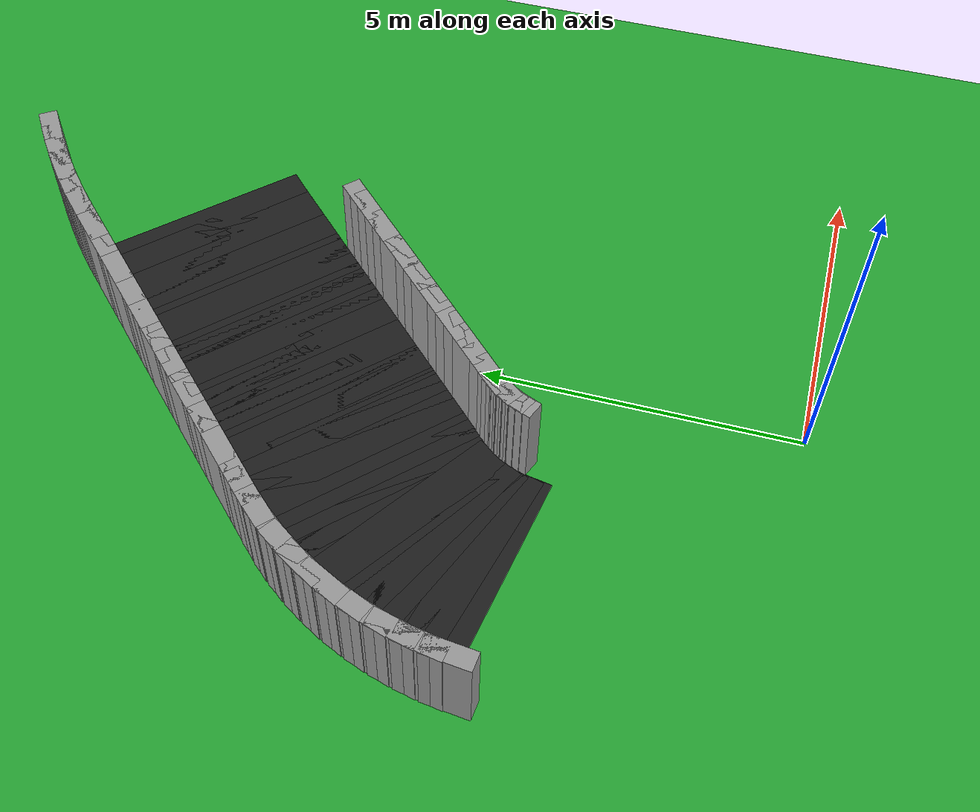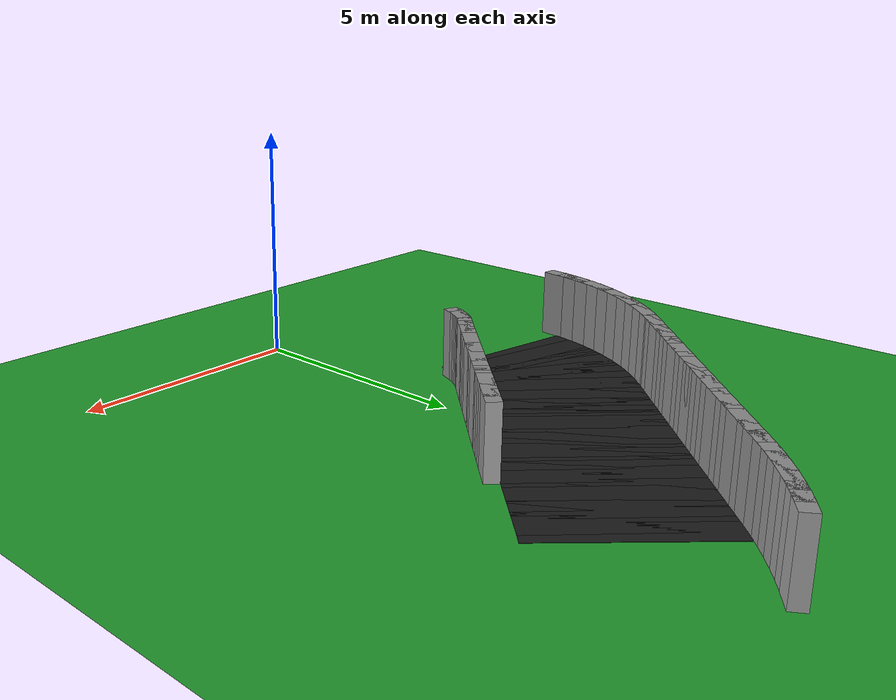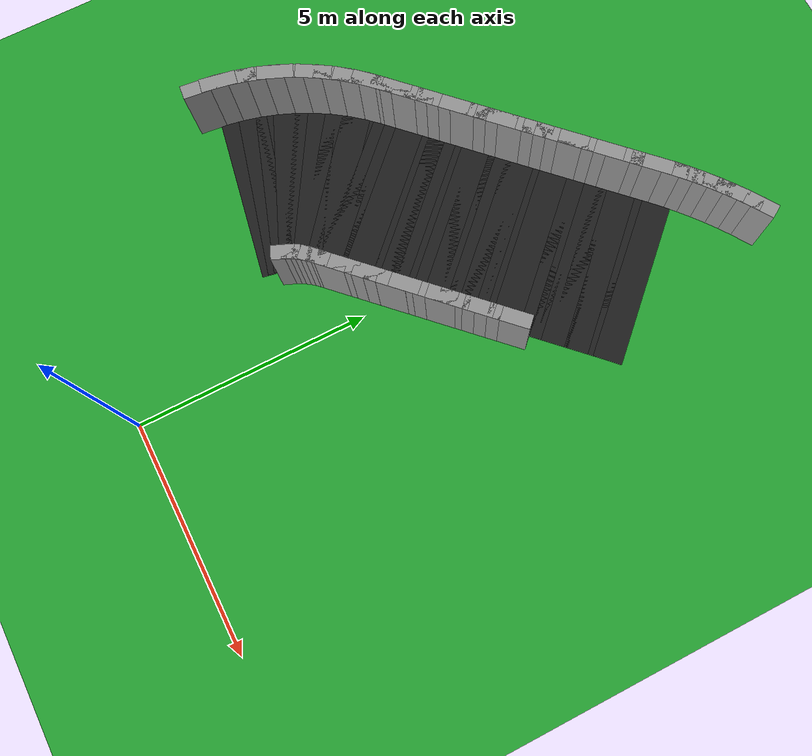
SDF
<sdf version="1.6">
 <world name="obstacle_tight">
  <include><uri>model://sun</uri></include>
  <model name="ground_plane">
   <static>true</static>
   <link name="link">
    <collision name="collision">
     <surface><friction><ode><mu>100</mu><mu2>50</mu2></ode></friction></surface>
     <geometry><plane><normal>0 0 1</normal><size>120 120</size></plane></geometry>
    </collision>
    <visual name="visual">
     <geometry><plane><normal>0 0 1</normal><size>120 120</size></plane></geometry>
     <material>
      <script><uri>file://media/materials/scripts/gazebo.material</uri><name>Gazebo/Green</name></script>
     </material>
    </visual>
   </link>
  </model>
  <model name="curbR_260">
   <static>true</static>
   <pose>1.962 12.877 0.750 0 0 -2.56040</pose>
   <link name="link">
    <collision name="collision"><geometry><box><size>0.673 0.300 1.500</size></box></geometry></collision>
    <visual name="visual">
     <geometry><box><size>0.673 0.300 1.500</size></box></geometry>
     <material>
      <script><uri>file://media/materials/scripts/gazebo.material</uri><name>Gazebo/Grey</name></script>
     </material>
    </visual>
   </link>
  </model>
  <model name="curbR_261">
   <static>true</static>
   <pose>1.704 12.702 0.750 0 0 -2.52898</pose>
   <link name="link">
    <collision name="collision"><geometry><box><size>0.673 0.300 1.500</size></box></geometry></collision>
    <visual name="visual">
     <geometry><box><size>0.673 0.300 1.500</size></box></geometry>
     <material>
      <script><uri>file://media/materials/scripts/gazebo.material</uri><name>Gazebo/Grey</name></script>
     </material>
    </visual>
   </link>
  </model>
  <model name="curbR_262">
   <static>true</static>
   <pose>1.451 12.518 0.750 0 0 -2.49757</pose>
   <link name="link">
    <collision name="collision"><geometry><box><size>0.673 0.300 1.500</size></box></geometry></collision>
    <visual name="visual">
     <geometry><box><size>0.673 0.300 1.500</size></box></geometry>
     <material>
      <script><uri>file://media/materials/scripts/gazebo.material</uri><name>Gazebo/Grey</name></script>
     </material>
    </visual>
   </link>
  </model>
  <model name="curbR_263">
   <static>true</static>
   <pose>1.204 12.326 0.750 0 0 -2.46615</pose>
   <link name="link">
    <collision name="collision"><geometry><box><size>0.673 0.300 1.500</size></box></geometry></collision>
    <visual name="visual">
     <geometry><box><size>0.673 0.300 1.500</size></box></geometry>
     <material>
      <script><uri>file://media/materials/scripts/gazebo.material</uri><name>Gazebo/Grey</name></script>
     </material>
    </visual>
   </link>
  </model>
  <model name="curbR_264">
   <static>true</static>
   <pose>0.963 12.127 0.750 0 0 -2.43473</pose>
   <link name="link">
    <collision name="collision"><geometry><box><size>0.673 0.300 1.500</size></box></geometry></collision>
    <visual name="visual">
     <geometry><box><size>0.673 0.300 1.500</size></box></geometry>
     <material>
      <script><uri>file://media/materials/scripts/gazebo.material</uri><name>Gazebo/Grey</name></script>
     </material>
    </visual>
   </link>
  </model>
  <model name="curbR_265">
   <static>true</static>
   <pose>0.728 11.920 0.750 0 0 -2.40332</pose>
   <link name="link">
    <collision name="collision"><geometry><box><size>0.673 0.300 1.500</size></box></geometry></collision>
    <visual name="visual">
     <geometry><box><size>0.673 0.300 1.500</size></box></geometry>
     <material>
      <script><uri>file://media/materials/scripts/gazebo.material</uri><name>Gazebo/Grey</name></script>
     </material>
    </visual>
   </link>
  </model>
  <model name="asphalt_266">
   <static>true</static>
   <pose>1.857 10.306 0.005 0 0 -2.37190</pose>
   <link name="link">
    <visual name="visual">
     <geometry><box><size>0.611 3.600 0.010</size></box></geometry>
     <material>
      <script><uri>file://media/materials/scripts/gazebo.material</uri><name>Gazebo/Black</name></script>
     </material>
    </visual>
   </link>
  </model>
  <model name="curbR_266">
   <static>true</static>
   <pose>0.501 11.706 0.750 0 0 -2.37190</pose>
   <link name="link">
    <collision name="collision"><geometry><box><size>0.673 0.300 1.500</size></box></geometry></collision>
    <visual name="visual">
     <geometry><box><size>0.673 0.300 1.500</size></box></geometry>
     <material>
      <script><uri>file://media/materials/scripts/gazebo.material</uri><name>Gazebo/Grey</name></script>
     </material>
    </visual>
   </link>
  </model>
  <model name="asphalt_267">
   <static>true</static>
   <pose>1.679 10.130 0.005 0 0 -2.35619</pose>
   <link name="link">
    <visual name="visual">
     <geometry><box><size>0.610 3.600 0.010</size></box></geometry>
     <material>
      <script><uri>file://media/materials/scripts/gazebo.material</uri><name>Gazebo/Black</name></script>
     </material>
    </visual>
   </link>
  </model>
  <model name="curbR_267">
   <static>true</static>
   <pose>0.300 11.509 0.750 0 0 -2.35619</pose>
   <link name="link">
    <collision name="collision"><geometry><box><size>0.610 0.300 1.500</size></box></geometry></collision>
    <visual name="visual">
     <geometry><box><size>0.610 0.300 1.500</size></box></geometry>
     <material>
      <script><uri>file://media/materials/scripts/gazebo.material</uri><name>Gazebo/Grey</name></script>
     </material>
    </visual>
   </link>
  </model>
  <model name="asphalt_268">
   <static>true</static>
   <pose>1.502 9.954 0.005 0 0 -2.35619</pose>
   <link name="link">
    <visual name="visual">
     <geometry><box><size>0.610 3.600 0.010</size></box></geometry>
     <material>
      <script><uri>file://media/materials/scripts/gazebo.material</uri><name>Gazebo/Black</name></script>
     </material>
    </visual>
   </link>
  </model>
  <model name="curbR_268">
   <static>true</static>
   <pose>0.123 11.332 0.750 0 0 -2.35619</pose>
   <link name="link">
    <collision name="collision"><geometry><box><size>0.610 0.300 1.500</size></box></geometry></collision>
    <visual name="visual">
     <geometry><box><size>0.610 0.300 1.500</size></box></geometry>
     <material>
      <script><uri>file://media/materials/scripts/gazebo.material</uri><name>Gazebo/Grey</name></script>
     </material>
    </visual>
   </link>
  </model>
  <model name="asphalt_269">
   <static>true</static>
   <pose>1.325 9.777 0.005 0 0 -2.35619</pose>
   <link name="link">
    <visual name="visual">
     <geometry><box><size>0.610 3.600 0.010</size></box></geometry>
     <material>
      <script><uri>file://media/materials/scripts/gazebo.material</uri><name>Gazebo/Black</name></script>
     </material>
    </visual>
   </link>
  </model>
  <model name="curbR_269">
   <static>true</static>
   <pose>-0.054 11.156 0.750 0 0 -2.35619</pose>
   <link name="link">
    <collision name="collision"><geometry><box><size>0.610 0.300 1.500</size></box></geometry></collision>
    <visual name="visual">
     <geometry><box><size>0.610 0.300 1.500</size></box></geometry>
     <material>
      <script><uri>file://media/materials/scripts/gazebo.material</uri><name>Gazebo/Grey</name></script>
     </material>
    </visual>
   </link>
  </model>
  <model name="asphalt_270">
   <static>true</static>
   <pose>1.149 9.600 0.005 0 0 -2.35619</pose>
   <link name="link">
    <visual name="visual">
     <geometry><box><size>0.610 3.600 0.010</size></box></geometry>
     <material>
      <script><uri>file://media/materials/scripts/gazebo.material</uri><name>Gazebo/Black</name></script>
     </material>
    </visual>
   </link>
  </model>
  <model name="curbR_270">
   <static>true</static>
   <pose>-0.230 10.979 0.750 0 0 -2.35619</pose>
   <link name="link">
    <collision name="collision"><geometry><box><size>0.610 0.300 1.500</size></box></geometry></collision>
    <visual name="visual">
     <geometry><box><size>0.610 0.300 1.500</size></box></geometry>
     <material>
      <script><uri>file://media/materials/scripts/gazebo.material</uri><name>Gazebo/Grey</name></script>
     </material>
    </visual>
   </link>
  </model>
  <model name="asphalt_271">
   <static>true</static>
   <pose>0.972 9.423 0.005 0 0 -2.35619</pose>
   <link name="link">
    <visual name="visual">
     <geometry><box><size>0.610 3.600 0.010</size></box></geometry>
     <material>
      <script><uri>file://media/materials/scripts/gazebo.material</uri><name>Gazebo/Black</name></script>
     </material>
    </visual>
   </link>
  </model>
  <model name="curbR_271">
   <static>true</static>
   <pose>-0.407 10.802 0.750 0 0 -2.35619</pose>
   <link name="link">
    <collision name="collision"><geometry><box><size>0.610 0.300 1.500</size></box></geometry></collision>
    <visual name="visual">
     <geometry><box><size>0.610 0.300 1.500</size></box></geometry>
     <material>
      <script><uri>file://media/materials/scripts/gazebo.material</uri><name>Gazebo/Grey</name></script>
     </material>
    </visual>
   </link>
  </model>
  <model name="asphalt_272">
   <static>true</static>
   <pose>0.795 9.247 0.005 0 0 -2.35619</pose>
   <link name="link">
    <visual name="visual">
     <geometry><box><size>0.610 3.600 0.010</size></box></geometry>
     <material>
      <script><uri>file://media/materials/scripts/gazebo.material</uri><name>Gazebo/Black</name></script>
     </material>
    </visual>
   </link>
  </model>
  <model name="curbR_272">
   <static>true</static>
   <pose>-0.584 10.625 0.750 0 0 -2.35619</pose>
   <link name="link">
    <collision name="collision"><geometry><box><size>0.610 0.300 1.500</size></box></geometry></collision>
    <visual name="visual">
     <geometry><box><size>0.610 0.300 1.500</size></box></geometry>
     <material>
      <script><uri>file://media/materials/scripts/gazebo.material</uri><name>Gazebo/Grey</name></script>
     </material>
    </visual>
   </link>
  </model>
  <model name="asphalt_273">
   <static>true</static>
   <pose>0.618 9.070 0.005 0 0 -2.35619</pose>
   <link name="link">
    <visual name="visual">
     <geometry><box><size>0.610 3.600 0.010</size></box></geometry>
     <material>
      <script><uri>file://media/materials/scripts/gazebo.material</uri><name>Gazebo/Black</name></script>
     </material>
    </visual>
   </link>
  </model>
  <model name="curbR_273">
   <static>true</static>
   <pose>-0.761 10.449 0.750 0 0 -2.35619</pose>
   <link name="link">
    <collision name="collision"><geometry><box><size>0.610 0.300 1.500</size></box></geometry></collision>
    <visual name="visual">
     <geometry><box><size>0.610 0.300 1.500</size></box></geometry>
     <material>
      <script><uri>file://media/materials/scripts/gazebo.material</uri><name>Gazebo/Grey</name></script>
     </material>
    </visual>
   </link>
  </model>
  <model name="asphalt_274">
   <static>true</static>
   <pose>0.441 8.893 0.005 0 0 -2.35619</pose>
   <link name="link">
    <visual name="visual">
     <geometry><box><size>0.610 3.600 0.010</size></box></geometry>
     <material>
      <script><uri>file://media/materials/scripts/gazebo.material</uri><name>Gazebo/Black</name></script>
     </material>
    </visual>
   </link>
  </model>
  <model name="curbL_274">
   <static>true</static>
   <pose>1.820 7.514 0.750 0 0 -2.35619</pose>
   <link name="link">
    <collision name="collision"><geometry><box><size>0.610 0.300 1.500</size></box></geometry></collision>
    <visual name="visual">
     <geometry><box><size>0.610 0.300 1.500</size></box></geometry>
     <material>
      <script><uri>file://media/materials/scripts/gazebo.material</uri><name>Gazebo/Grey</name></script>
     </material>
    </visual>
   </link>
  </model>
  <model name="curbR_274">
   <static>true</static>
   <pose>-0.937 10.272 0.750 0 0 -2.35619</pose>
   <link name="link">
    <collision name="collision"><geometry><box><size>0.610 0.300 1.500</size></box></geometry></collision>
    <visual name="visual">
     <geometry><box><size>0.610 0.300 1.500</size></box></geometry>
     <material>
      <script><uri>file://media/materials/scripts/gazebo.material</uri><name>Gazebo/Grey</name></script>
     </material>
    </visual>
   </link>
  </model>
  <model name="asphalt_275">
   <static>true</static>
   <pose>0.265 8.716 0.005 0 0 -2.35619</pose>
   <link name="link">
    <visual name="visual">
     <geometry><box><size>0.610 3.600 0.010</size></box></geometry>
     <material>
      <script><uri>file://media/materials/scripts/gazebo.material</uri><name>Gazebo/Black</name></script>
     </material>
    </visual>
   </link>
  </model>
  <model name="curbL_275">
   <static>true</static>
   <pose>1.643 7.337 0.750 0 0 -2.35619</pose>
   <link name="link">
    <collision name="collision"><geometry><box><size>0.610 0.300 1.500</size></box></geometry></collision>
    <visual name="visual">
     <geometry><box><size>0.610 0.300 1.500</size></box></geometry>
     <material>
      <script><uri>file://media/materials/scripts/gazebo.material</uri><name>Gazebo/Grey</name></script>
     </material>
    </visual>
   </link>
  </model>
  <model name="curbR_275">
   <static>true</static>
   <pose>-1.114 10.095 0.750 0 0 -2.35619</pose>
   <link name="link">
    <collision name="collision"><geometry><box><size>0.610 0.300 1.500</size></box></geometry></collision>
    <visual name="visual">
     <geometry><box><size>0.610 0.300 1.500</size></box></geometry>
     <material>
      <script><uri>file://media/materials/scripts/gazebo.material</uri><name>Gazebo/Grey</name></script>
     </material>
    </visual>
   </link>
  </model>
  <model name="asphalt_276">
   <static>true</static>
   <pose>0.088 8.539 0.005 0 0 -2.35619</pose>
   <link name="link">
    <visual name="visual">
     <geometry><box><size>0.610 3.600 0.010</size></box></geometry>
     <material>
      <script><uri>file://media/materials/scripts/gazebo.material</uri><name>Gazebo/Black</name></script>
     </material>
    </visual>
   </link>
  </model>
  <model name="curbL_276">
   <static>true</static>
   <pose>1.467 7.161 0.750 0 0 -2.35619</pose>
   <link name="link">
    <collision name="collision"><geometry><box><size>0.610 0.300 1.500</size></box></geometry></collision>
    <visual name="visual">
     <geometry><box><size>0.610 0.300 1.500</size></box></geometry>
     <material>
      <script><uri>file://media/materials/scripts/gazebo.material</uri><name>Gazebo/Grey</name></script>
     </material>
    </visual>
   </link>
  </model>
  <model name="curbR_276">
   <static>true</static>
   <pose>-1.291 9.918 0.750 0 0 -2.35619</pose>
   <link name="link">
    <collision name="collision"><geometry><box><size>0.610 0.300 1.500</size></box></geometry></collision>
    <visual name="visual">
     <geometry><box><size>0.610 0.300 1.500</size></box></geometry>
     <material>
      <script><uri>file://media/materials/scripts/gazebo.material</uri><name>Gazebo/Grey</name></script>
     </material>
    </visual>
   </link>
  </model>
  <model name="asphalt_277">
   <static>true</static>
   <pose>-0.089 8.363 0.005 0 0 -2.35619</pose>
   <link name="link">
    <visual name="visual">
     <geometry><box><size>0.610 3.600 0.010</size></box></geometry>
     <material>
      <script><uri>file://media/materials/scripts/gazebo.material</uri><name>Gazebo/Black</name></script>
     </material>
    </visual>
   </link>
  </model>
  <model name="curbL_277">
   <static>true</static>
   <pose>1.290 6.984 0.750 0 0 -2.35619</pose>
   <link name="link">
    <collision name="collision"><geometry><box><size>0.610 0.300 1.500</size></box></geometry></collision>
    <visual name="visual">
     <geometry><box><size>0.610 0.300 1.500</size></box></geometry>
     <material>
      <script><uri>file://media/materials/scripts/gazebo.material</uri><name>Gazebo/Grey</name></script>
     </material>
    </visual>
   </link>
  </model>
  <model name="curbR_277">
   <static>true</static>
   <pose>-1.468 9.741 0.750 0 0 -2.35619</pose>
   <link name="link">
    <collision name="collision"><geometry><box><size>0.610 0.300 1.500</size></box></geometry></collision>
    <visual name="visual">
     <geometry><box><size>0.610 0.300 1.500</size></box></geometry>
     <material>
      <script><uri>file://media/materials/scripts/gazebo.material</uri><name>Gazebo/Grey</name></script>
     </material>
    </visual>
   </link>
  </model>
  <model name="asphalt_278">
   <static>true</static>
   <pose>-0.266 8.186 0.005 0 0 -2.35619</pose>
   <link name="link">
    <visual name="visual">
     <geometry><box><size>0.610 3.600 0.010</size></box></geometry>
     <material>
      <script><uri>file://media/materials/scripts/gazebo.material</uri><name>Gazebo/Black</name></script>
     </material>
    </visual>
   </link>
  </model>
  <model name="curbL_278">
   <static>true</static>
   <pose>1.113 6.807 0.750 0 0 -2.35619</pose>
   <link name="link">
    <collision name="collision"><geometry><box><size>0.610 0.300 1.500</size></box></geometry></collision>
    <visual name="visual">
     <geometry><box><size>0.610 0.300 1.500</size></box></geometry>
     <material>
      <script><uri>file://media/materials/scripts/gazebo.material</uri><name>Gazebo/Grey</name></script>
     </material>
    </visual>
   </link>
  </model>
  <model name="curbR_278">
   <static>true</static>
   <pose>-1.645 9.565 0.750 0 0 -2.35619</pose>
   <link name="link">
    <collision name="collision"><geometry><box><size>0.610 0.300 1.500</size></box></geometry></collision>
    <visual name="visual">
     <geometry><box><size>0.610 0.300 1.500</size></box></geometry>
     <material>
      <script><uri>file://media/materials/scripts/gazebo.material</uri><name>Gazebo/Grey</name></script>
     </material>
    </visual>
   </link>
  </model>
  <model name="asphalt_279">
   <static>true</static>
   <pose>-0.442 8.009 0.005 0 0 -2.35619</pose>
   <link name="link">
    <visual name="visual">
     <geometry><box><size>0.610 3.600 0.010</size></box></geometry>
     <material>
      <script><uri>file://media/materials/scripts/gazebo.material</uri><name>Gazebo/Black</name></script>
     </material>
    </visual>
   </link>
  </model>
  <model name="curbL_279">
   <static>true</static>
   <pose>0.936 6.630 0.750 0 0 -2.35619</pose>
   <link name="link">
    <collision name="collision"><geometry><box><size>0.610 0.300 1.500</size></box></geometry></collision>
    <visual name="visual">
     <geometry><box><size>0.610 0.300 1.500</size></box></geometry>
     <material>
      <script><uri>file://media/materials/scripts/gazebo.material</uri><name>Gazebo/Grey</name></script>
     </material>
    </visual>
   </link>
  </model>
  <model name="curbR_279">
   <static>true</static>
   <pose>-1.821 9.388 0.750 0 0 -2.35619</pose>
   <link name="link">
    <collision name="collision"><geometry><box><size>0.610 0.300 1.500</size></box></geometry></collision>
    <visual name="visual">
     <geometry><box><size>0.610 0.300 1.500</size></box></geometry>
     <material>
      <script><uri>file://media/materials/scripts/gazebo.material</uri><name>Gazebo/Grey</name></script>
     </material>
    </visual>
   </link>
  </model>
  <model name="asphalt_280">
   <static>true</static>
   <pose>-0.619 7.832 0.005 0 0 -2.35619</pose>
   <link name="link">
    <visual name="visual">
     <geometry><box><size>0.610 3.600 0.010</size></box></geometry>
     <material>
      <script><uri>file://media/materials/scripts/gazebo.material</uri><name>Gazebo/Black</name></script>
     </material>
    </visual>
   </link>
  </model>
  <model name="curbL_280">
   <static>true</static>
   <pose>0.760 6.453 0.750 0 0 -2.35619</pose>
   <link name="link">
    <collision name="collision"><geometry><box><size>0.610 0.300 1.500</size></box></geometry></collision>
    <visual name="visual">
     <geometry><box><size>0.610 0.300 1.500</size></box></geometry>
     <material>
      <script><uri>file://media/materials/scripts/gazebo.material</uri><name>Gazebo/Grey</name></script>
     </material>
    </visual>
   </link>
  </model>
  <model name="curbR_280">
   <static>true</static>
   <pose>-1.998 9.211 0.750 0 0 -2.35619</pose>
   <link name="link">
    <collision name="collision"><geometry><box><size>0.610 0.300 1.500</size></box></geometry></collision>
    <visual name="visual">
     <geometry><box><size>0.610 0.300 1.500</size></box></geometry>
     <material>
      <script><uri>file://media/materials/scripts/gazebo.material</uri><name>Gazebo/Grey</name></script>
     </material>
    </visual>
   </link>
  </model>
  <model name="asphalt_281">
   <static>true</static>
   <pose>-0.796 7.656 0.005 0 0 -2.35619</pose>
   <link name="link">
    <visual name="visual">
     <geometry><box><size>0.610 3.600 0.010</size></box></geometry>
     <material>
      <script><uri>file://media/materials/scripts/gazebo.material</uri><name>Gazebo/Black</name></script>
     </material>
    </visual>
   </link>
  </model>
  <model name="curbL_281">
   <static>true</static>
   <pose>0.583 6.277 0.750 0 0 -2.35619</pose>
   <link name="link">
    <collision name="collision"><geometry><box><size>0.610 0.300 1.500</size></box></geometry></collision>
    <visual name="visual">
     <geometry><box><size>0.610 0.300 1.500</size></box></geometry>
     <material>
      <script><uri>file://media/materials/scripts/gazebo.material</uri><name>Gazebo/Grey</name></script>
     </material>
    </visual>
   </link>
  </model>
  <model name="curbR_281">
   <static>true</static>
   <pose>-2.175 9.034 0.750 0 0 -2.35619</pose>
   <link name="link">
    <collision name="collision"><geometry><box><size>0.610 0.300 1.500</size></box></geometry></collision>
    <visual name="visual">
     <geometry><box><size>0.610 0.300 1.500</size></box></geometry>
     <material>
      <script><uri>file://media/materials/scripts/gazebo.material</uri><name>Gazebo/Grey</name></script>
     </material>
    </visual>
   </link>
  </model>
  <model name="asphalt_282">
   <static>true</static>
   <pose>-0.973 7.479 0.005 0 0 -2.35619</pose>
   <link name="link">
    <visual name="visual">
     <geometry><box><size>0.610 3.600 0.010</size></box></geometry>
     <material>
      <script><uri>file://media/materials/scripts/gazebo.material</uri><name>Gazebo/Black</name></script>
     </material>
    </visual>
   </link>
  </model>
  <model name="curbL_282">
   <static>true</static>
   <pose>0.406 6.100 0.750 0 0 -2.35619</pose>
   <link name="link">
    <collision name="collision"><geometry><box><size>0.610 0.300 1.500</size></box></geometry></collision>
    <visual name="visual">
     <geometry><box><size>0.610 0.300 1.500</size></box></geometry>
     <material>
      <script><uri>file://media/materials/scripts/gazebo.material</uri><name>Gazebo/Grey</name></script>
     </material>
    </visual>
   </link>
  </model>
  <model name="curbR_282">
   <static>true</static>
   <pose>-2.352 8.858 0.750 0 0 -2.35619</pose>
   <link name="link">
    <collision name="collision"><geometry><box><size>0.610 0.300 1.500</size></box></geometry></collision>
    <visual name="visual">
     <geometry><box><size>0.610 0.300 1.500</size></box></geometry>
     <material>
      <script><uri>file://media/materials/scripts/gazebo.material</uri><name>Gazebo/Grey</name></script>
     </material>
    </visual>
   </link>
  </model>
  <model name="asphalt_283">
   <static>true</static>
   <pose>-1.150 7.302 0.005 0 0 -2.35619</pose>
   <link name="link">
    <visual name="visual">
     <geometry><box><size>0.610 3.600 0.010</size></box></geometry>
     <material>
      <script><uri>file://media/materials/scripts/gazebo.material</uri><name>Gazebo/Black</name></script>
     </material>
    </visual>
   </link>
  </model>
  <model name="curbL_283">
   <static>true</static>
   <pose>0.229 5.923 0.750 0 0 -2.35619</pose>
   <link name="link">
    <collision name="collision"><geometry><box><size>0.610 0.300 1.500</size></box></geometry></collision>
    <visual name="visual">
     <geometry><box><size>0.610 0.300 1.500</size></box></geometry>
     <material>
      <script><uri>file://media/materials/scripts/gazebo.material</uri><name>Gazebo/Grey</name></script>
     </material>
    </visual>
   </link>
  </model>
  <model name="curbR_283">
   <static>true</static>
   <pose>-2.528 8.681 0.750 0 0 -2.35619</pose>
   <link name="link">
    <collision name="collision"><geometry><box><size>0.610 0.300 1.500</size></box></geometry></collision>
    <visual name="visual">
     <geometry><box><size>0.610 0.300 1.500</size></box></geometry>
     <material>
      <script><uri>file://media/materials/scripts/gazebo.material</uri><name>Gazebo/Grey</name></script>
     </material>
    </visual>
   </link>
  </model>
  <model name="asphalt_284">
   <static>true</static>
   <pose>-1.326 7.125 0.005 0 0 -2.35619</pose>
   <link name="link">
    <visual name="visual">
     <geometry><box><size>0.610 3.600 0.010</size></box></geometry>
     <material>
      <script><uri>file://media/materials/scripts/gazebo.material</uri><name>Gazebo/Black</name></script>
     </material>
    </visual>
   </link>
  </model>
  <model name="curbL_284">
   <static>true</static>
   <pose>0.053 5.746 0.750 0 0 -2.35619</pose>
   <link name="link">
    <collision name="collision"><geometry><box><size>0.610 0.300 1.500</size></box></geometry></collision>
    <visual name="visual">
     <geometry><box><size>0.610 0.300 1.500</size></box></geometry>
     <material>
      <script><uri>file://media/materials/scripts/gazebo.material</uri><name>Gazebo/Grey</name></script>
     </material>
    </visual>
   </link>
  </model>
  <model name="curbR_284">
   <static>true</static>
   <pose>-2.705 8.504 0.750 0 0 -2.35619</pose>
   <link name="link">
    <collision name="collision"><geometry><box><size>0.610 0.300 1.500</size></box></geometry></collision>
    <visual name="visual">
     <geometry><box><size>0.610 0.300 1.500</size></box></geometry>
     <material>
      <script><uri>file://media/materials/scripts/gazebo.material</uri><name>Gazebo/Grey</name></script>
     </material>
    </visual>
   </link>
  </model>
  <model name="asphalt_285">
   <static>true</static>
   <pose>-1.503 6.948 0.005 0 0 -2.35619</pose>
   <link name="link">
    <visual name="visual">
     <geometry><box><size>0.610 3.600 0.010</size></box></geometry>
     <material>
      <script><uri>file://media/materials/scripts/gazebo.material</uri><name>Gazebo/Black</name></script>
     </material>
    </visual>
   </link>
  </model>
  <model name="curbL_285">
   <static>true</static>
   <pose>-0.124 5.570 0.750 0 0 -2.35619</pose>
   <link name="link">
    <collision name="collision"><geometry><box><size>0.610 0.300 1.500</size></box></geometry></collision>
    <visual name="visual">
     <geometry><box><size>0.610 0.300 1.500</size></box></geometry>
     <material>
      <script><uri>file://media/materials/scripts/gazebo.material</uri><name>Gazebo/Grey</name></script>
     </material>
    </visual>
   </link>
  </model>
  <model name="curbR_285">
   <static>true</static>
   <pose>-2.882 8.327 0.750 0 0 -2.35619</pose>
   <link name="link">
    <collision name="collision"><geometry><box><size>0.610 0.300 1.500</size></box></geometry></collision>
    <visual name="visual">
     <geometry><box><size>0.610 0.300 1.500</size></box></geometry>
     <material>
      <script><uri>file://media/materials/scripts/gazebo.material</uri><name>Gazebo/Grey</name></script>
     </material>
    </visual>
   </link>
  </model>
  <model name="asphalt_286">
   <static>true</static>
   <pose>-1.680 6.772 0.005 0 0 -2.35619</pose>
   <link name="link">
    <visual name="visual">
     <geometry><box><size>0.610 3.600 0.010</size></box></geometry>
     <material>
      <script><uri>file://media/materials/scripts/gazebo.material</uri><name>Gazebo/Black</name></script>
     </material>
    </visual>
   </link>
  </model>
  <model name="curbL_286">
   <static>true</static>
   <pose>-0.301 5.393 0.750 0 0 -2.35619</pose>
   <link name="link">
    <collision name="collision"><geometry><box><size>0.610 0.300 1.500</size></box></geometry></collision>
    <visual name="visual">
     <geometry><box><size>0.610 0.300 1.500</size></box></geometry>
     <material>
      <script><uri>file://media/materials/scripts/gazebo.material</uri><name>Gazebo/Grey</name></script>
     </material>
    </visual>
   </link>
  </model>
  <model name="curbR_286">
   <static>true</static>
   <pose>-3.059 8.150 0.750 0 0 -2.35619</pose>
   <link name="link">
    <collision name="collision"><geometry><box><size>0.610 0.300 1.500</size></box></geometry></collision>
    <visual name="visual">
     <geometry><box><size>0.610 0.300 1.500</size></box></geometry>
     <material>
      <script><uri>file://media/materials/scripts/gazebo.material</uri><name>Gazebo/Grey</name></script>
     </material>
    </visual>
   </link>
  </model>
  <model name="asphalt_287">
   <static>true</static>
   <pose>-1.857 6.595 0.005 0 0 -2.35619</pose>
   <link name="link">
    <visual name="visual">
     <geometry><box><size>0.610 3.600 0.010</size></box></geometry>
     <material>
      <script><uri>file://media/materials/scripts/gazebo.material</uri><name>Gazebo/Black</name></script>
     </material>
    </visual>
   </link>
  </model>
  <model name="curbL_287">
   <static>true</static>
   <pose>-0.478 5.216 0.750 0 0 -2.35619</pose>
   <link name="link">
    <collision name="collision"><geometry><box><size>0.610 0.300 1.500</size></box></geometry></collision>
    <visual name="visual">
     <geometry><box><size>0.610 0.300 1.500</size></box></geometry>
     <material>
      <script><uri>file://media/materials/scripts/gazebo.material</uri><name>Gazebo/Grey</name></script>
     </material>
    </visual>
   </link>
  </model>
  <model name="curbR_287">
   <static>true</static>
   <pose>-3.236 7.974 0.750 0 0 -2.35619</pose>
   <link name="link">
    <collision name="collision"><geometry><box><size>0.610 0.300 1.500</size></box></geometry></collision>
    <visual name="visual">
     <geometry><box><size>0.610 0.300 1.500</size></box></geometry>
     <material>
      <script><uri>file://media/materials/scripts/gazebo.material</uri><name>Gazebo/Grey</name></script>
     </material>
    </visual>
   </link>
  </model>
  <model name="asphalt_288">
   <static>true</static>
   <pose>-2.033 6.418 0.005 0 0 -2.35619</pose>
   <link name="link">
    <visual name="visual">
     <geometry><box><size>0.610 3.600 0.010</size></box></geometry>
     <material>
      <script><uri>file://media/materials/scripts/gazebo.material</uri><name>Gazebo/Black</name></script>
     </material>
    </visual>
   </link>
  </model>
  <model name="curbL_288">
   <static>true</static>
   <pose>-0.655 5.039 0.750 0 0 -2.35619</pose>
   <link name="link">
    <collision name="collision"><geometry><box><size>0.610 0.300 1.500</size></box></geometry></collision>
    <visual name="visual">
     <geometry><box><size>0.610 0.300 1.500</size></box></geometry>
     <material>
      <script><uri>file://media/materials/scripts/gazebo.material</uri><name>Gazebo/Grey</name></script>
     </material>
    </visual>
   </link>
  </model>
  <model name="curbR_288">
   <static>true</static>
   <pose>-3.412 7.797 0.750 0 0 -2.35619</pose>
   <link name="link">
    <collision name="collision"><geometry><box><size>0.610 0.300 1.500</size></box></geometry></collision>
    <visual name="visual">
     <geometry><box><size>0.610 0.300 1.500</size></box></geometry>
     <material>
      <script><uri>file://media/materials/scripts/gazebo.material</uri><name>Gazebo/Grey</name></script>
     </material>
    </visual>
   </link>
  </model>
  <model name="asphalt_289">
   <static>true</static>
   <pose>-2.210 6.241 0.005 0 0 -2.35619</pose>
   <link name="link">
    <visual name="visual">
     <geometry><box><size>0.610 3.600 0.010</size></box></geometry>
     <material>
      <script><uri>file://media/materials/scripts/gazebo.material</uri><name>Gazebo/Black</name></script>
     </material>
    </visual>
   </link>
  </model>
  <model name="curbL_289">
   <static>true</static>
   <pose>-0.831 4.862 0.750 0 0 -2.35619</pose>
   <link name="link">
    <collision name="collision"><geometry><box><size>0.610 0.300 1.500</size></box></geometry></collision>
    <visual name="visual">
     <geometry><box><size>0.610 0.300 1.500</size></box></geometry>
     <material>
      <script><uri>file://media/materials/scripts/gazebo.material</uri><name>Gazebo/Grey</name></script>
     </material>
    </visual>
   </link>
  </model>
  <model name="curbR_289">
   <static>true</static>
   <pose>-3.589 7.620 0.750 0 0 -2.35619</pose>
   <link name="link">
    <collision name="collision"><geometry><box><size>0.610 0.300 1.500</size></box></geometry></collision>
    <visual name="visual">
     <geometry><box><size>0.610 0.300 1.500</size></box></geometry>
     <material>
      <script><uri>file://media/materials/scripts/gazebo.material</uri><name>Gazebo/Grey</name></script>
     </material>
    </visual>
   </link>
  </model>
  <model name="asphalt_290">
   <static>true</static>
   <pose>-2.387 6.065 0.005 0 0 -2.35619</pose>
   <link name="link">
    <visual name="visual">
     <geometry><box><size>0.610 3.600 0.010</size></box></geometry>
     <material>
      <script><uri>file://media/materials/scripts/gazebo.material</uri><name>Gazebo/Black</name></script>
     </material>
    </visual>
   </link>
  </model>
  <model name="curbL_290">
   <static>true</static>
   <pose>-1.008 4.686 0.750 0 0 -2.35619</pose>
   <link name="link">
    <collision name="collision"><geometry><box><size>0.610 0.300 1.500</size></box></geometry></collision>
    <visual name="visual">
     <geometry><box><size>0.610 0.300 1.500</size></box></geometry>
     <material>
      <script><uri>file://media/materials/scripts/gazebo.material</uri><name>Gazebo/Grey</name></script>
     </material>
    </visual>
   </link>
  </model>
  <model name="curbR_290">
   <static>true</static>
   <pose>-3.766 7.443 0.750 0 0 -2.35619</pose>
   <link name="link">
    <collision name="collision"><geometry><box><size>0.610 0.300 1.500</size></box></geometry></collision>
    <visual name="visual">
     <geometry><box><size>0.610 0.300 1.500</size></box></geometry>
     <material>
      <script><uri>file://media/materials/scripts/gazebo.material</uri><name>Gazebo/Grey</name></script>
     </material>
    </visual>
   </link>
  </model>
  <model name="asphalt_291">
   <static>true</static>
   <pose>-2.561 5.885 0.005 0 0 -2.32049</pose>
   <link name="link">
    <visual name="visual">
     <geometry><box><size>0.610 3.600 0.010</size></box></geometry>
     <material>
      <script><uri>file://media/materials/scripts/gazebo.material</uri><name>Gazebo/Black</name></script>
     </material>
    </visual>
   </link>
  </model>
  <model name="curbL_291">
   <static>true</static>
   <pose>-1.134 4.557 0.750 0 0 -2.32049</pose>
   <link name="link">
    <collision name="collision"><geometry><box><size>0.471 0.300 1.500</size></box></geometry></collision>
    <visual name="visual">
     <geometry><box><size>0.471 0.300 1.500</size></box></geometry>
     <material>
      <script><uri>file://media/materials/scripts/gazebo.material</uri><name>Gazebo/Grey</name></script>
     </material>
    </visual>
   </link>
  </model>
  <model name="curbR_291">
   <static>true</static>
   <pose>-3.987 7.213 0.750 0 0 -2.32049</pose>
   <link name="link">
    <collision name="collision"><geometry><box><size>0.749 0.300 1.500</size></box></geometry></collision>
    <visual name="visual">
     <geometry><box><size>0.749 0.300 1.500</size></box></geometry>
     <material>
      <script><uri>file://media/materials/scripts/gazebo.material</uri><name>Gazebo/Grey</name></script>
     </material>
    </visual>
   </link>
  </model>
  <model name="asphalt_292">
   <static>true</static>
   <pose>-2.724 5.696 0.005 0 0 -2.24909</pose>
   <link name="link">
    <visual name="visual">
     <geometry><box><size>0.610 3.600 0.010</size></box></geometry>
     <material>
      <script><uri>file://media/materials/scripts/gazebo.material</uri><name>Gazebo/Black</name></script>
     </material>
    </visual>
   </link>
  </model>
  <model name="curbL_292">
   <static>true</static>
   <pose>-1.207 4.473 0.750 0 0 -2.24909</pose>
   <link name="link">
    <collision name="collision"><geometry><box><size>0.471 0.300 1.500</size></box></geometry></collision>
    <visual name="visual">
     <geometry><box><size>0.471 0.300 1.500</size></box></geometry>
     <material>
      <script><uri>file://media/materials/scripts/gazebo.material</uri><name>Gazebo/Grey</name></script>
     </material>
    </visual>
   </link>
  </model>
  <model name="curbR_292">
   <static>true</static>
   <pose>-4.241 6.919 0.750 0 0 -2.24909</pose>
   <link name="link">
    <collision name="collision"><geometry><box><size>0.749 0.300 1.500</size></box></geometry></collision>
    <visual name="visual">
     <geometry><box><size>0.749 0.300 1.500</size></box></geometry>
     <material>
      <script><uri>file://media/materials/scripts/gazebo.material</uri><name>Gazebo/Grey</name></script>
     </material>
    </visual>
   </link>
  </model>
  <model name="asphalt_293">
   <static>true</static>
   <pose>-2.874 5.496 0.005 0 0 -2.17769</pose>
   <link name="link">
    <visual name="visual">
     <geometry><box><size>0.610 3.600 0.010</size></box></geometry>
     <material>
      <script><uri>file://media/materials/scripts/gazebo.material</uri><name>Gazebo/Black</name></script>
     </material>
    </visual>
   </link>
  </model>
  <model name="curbL_293">
   <static>true</static>
   <pose>-1.273 4.385 0.750 0 0 -2.17769</pose>
   <link name="link">
    <collision name="collision"><geometry><box><size>0.471 0.300 1.500</size></box></geometry></collision>
    <visual name="visual">
     <geometry><box><size>0.471 0.300 1.500</size></box></geometry>
     <material>
      <script><uri>file://media/materials/scripts/gazebo.material</uri><name>Gazebo/Grey</name></script>
     </material>
    </visual>
   </link>
  </model>
  <model name="curbR_293">
   <static>true</static>
   <pose>-4.475 6.607 0.750 0 0 -2.17769</pose>
   <link name="link">
    <collision name="collision"><geometry><box><size>0.749 0.300 1.500</size></box></geometry></collision>
    <visual name="visual">
     <geometry><box><size>0.749 0.300 1.500</size></box></geometry>
     <material>
      <script><uri>file://media/materials/scripts/gazebo.material</uri><name>Gazebo/Grey</name></script>
     </material>
    </visual>
   </link>
  </model>
  <model name="asphalt_294">
   <static>true</static>
   <pose>-3.009 5.286 0.005 0 0 -2.10630</pose>
   <link name="link">
    <visual name="visual">
     <geometry><box><size>0.610 3.600 0.010</size></box></geometry>
     <material>
      <script><uri>file://media/materials/scripts/gazebo.material</uri><name>Gazebo/Black</name></script>
     </material>
    </visual>
   </link>
  </model>
  <model name="curbL_294">
   <static>true</static>
   <pose>-1.333 4.292 0.750 0 0 -2.10630</pose>
   <link name="link">
    <collision name="collision"><geometry><box><size>0.471 0.300 1.500</size></box></geometry></collision>
    <visual name="visual">
     <geometry><box><size>0.471 0.300 1.500</size></box></geometry>
     <material>
      <script><uri>file://media/materials/scripts/gazebo.material</uri><name>Gazebo/Grey</name></script>
     </material>
    </visual>
   </link>
  </model>
  <model name="curbR_294">
   <static>true</static>
   <pose>-4.685 6.280 0.750 0 0 -2.10630</pose>
   <link name="link">
    <collision name="collision"><geometry><box><size>0.749 0.300 1.500</size></box></geometry></collision>
    <visual name="visual">
     <geometry><box><size>0.749 0.300 1.500</size></box></geometry>
     <material>
      <script><uri>file://media/materials/scripts/gazebo.material</uri><name>Gazebo/Grey</name></script>
     </material>
    </visual>
   </link>
  </model>
  <model name="asphalt_295">
   <static>true</static>
   <pose>-3.128 5.067 0.005 0 0 -2.03490</pose>
   <link name="link">
    <visual name="visual">
     <geometry><box><size>0.610 3.600 0.010</size></box></geometry>
     <material>
      <script><uri>file://media/materials/scripts/gazebo.material</uri><name>Gazebo/Black</name></script>
     </material>
    </visual>
   </link>
  </model>
  <model name="curbL_295">
   <static>true</static>
   <pose>-1.386 4.194 0.750 0 0 -2.03490</pose>
   <link name="link">
    <collision name="collision"><geometry><box><size>0.471 0.300 1.500</size></box></geometry></collision>
    <visual name="visual">
     <geometry><box><size>0.471 0.300 1.500</size></box></geometry>
     <material>
      <script><uri>file://media/materials/scripts/gazebo.material</uri><name>Gazebo/Grey</name></script>
     </material>
    </visual>
   </link>
  </model>
  <model name="curbR_295">
   <static>true</static>
   <pose>-4.871 5.939 0.750 0 0 -2.03490</pose>
   <link name="link">
    <collision name="collision"><geometry><box><size>0.749 0.300 1.500</size></box></geometry></collision>
    <visual name="visual">
     <geometry><box><size>0.749 0.300 1.500</size></box></geometry>
     <material>
      <script><uri>file://media/materials/scripts/gazebo.material</uri><name>Gazebo/Grey</name></script>
     </material>
    </visual>
   </link>
  </model>
  <model name="asphalt_296">
   <static>true</static>
   <pose>-3.232 4.840 0.005 0 0 -1.96350</pose>
   <link name="link">
    <visual name="visual">
     <geometry><box><size>0.610 3.600 0.010</size></box></geometry>
     <material>
      <script><uri>file://media/materials/scripts/gazebo.material</uri><name>Gazebo/Black</name></script>
     </material>
    </visual>
   </link>
  </model>
  <model name="curbL_296">
   <static>true</static>
   <pose>-1.432 4.094 0.750 0 0 -1.96350</pose>
   <link name="link">
    <collision name="collision"><geometry><box><size>0.471 0.300 1.500</size></box></geometry></collision>
    <visual name="visual">
     <geometry><box><size>0.471 0.300 1.500</size></box></geometry>
     <material>
      <script><uri>file://media/materials/scripts/gazebo.material</uri><name>Gazebo/Grey</name></script>
     </material>
    </visual>
   </link>
  </model>
  <model name="curbR_296">
   <static>true</static>
   <pose>-5.033 5.585 0.750 0 0 -1.96350</pose>
   <link name="link">
    <collision name="collision"><geometry><box><size>0.749 0.300 1.500</size></box></geometry></collision>
    <visual name="visual">
     <geometry><box><size>0.749 0.300 1.500</size></box></geometry>
     <material>
      <script><uri>file://media/materials/scripts/gazebo.material</uri><name>Gazebo/Grey</name></script>
     </material>
    </visual>
   </link>
  </model>
  <model name="asphalt_297">
   <static>true</static>
   <pose>-3.319 4.606 0.005 0 0 -1.89210</pose>
   <link name="link">
    <visual name="visual">
     <geometry><box><size>0.610 3.600 0.010</size></box></geometry>
     <material>
      <script><uri>file://media/materials/scripts/gazebo.material</uri><name>Gazebo/Black</name></script>
     </material>
    </visual>
   </link>
  </model>
  <model name="curbR_297">
   <static>true</static>
   <pose>-5.169 5.221 0.750 0 0 -1.89210</pose>
   <link name="link">
    <collision name="collision"><geometry><box><size>0.749 0.300 1.500</size></box></geometry></collision>
    <visual name="visual">
     <geometry><box><size>0.749 0.300 1.500</size></box></geometry>
     <material>
      <script><uri>file://media/materials/scripts/gazebo.material</uri><name>Gazebo/Grey</name></script>
     </material>
    </visual>
   </link>
  </model>
  <model name="asphalt_298">
   <static>true</static>
   <pose>-3.390 4.366 0.005 0 0 -1.82070</pose>
   <link name="link">
    <visual name="visual">
     <geometry><box><size>0.610 3.600 0.010</size></box></geometry>
     <material>
      <script><uri>file://media/materials/scripts/gazebo.material</uri><name>Gazebo/Black</name></script>
     </material>
    </visual>
   </link>
  </model>
  <model name="curbR_298">
   <static>true</static>
   <pose>-5.278 4.848 0.750 0 0 -1.82070</pose>
   <link name="link">
    <collision name="collision"><geometry><box><size>0.749 0.300 1.500</size></box></geometry></collision>
    <visual name="visual">
     <geometry><box><size>0.749 0.300 1.500</size></box></geometry>
     <material>
      <script><uri>file://media/materials/scripts/gazebo.material</uri><name>Gazebo/Grey</name></script>
     </material>
    </visual>
   </link>
  </model>
  <model name="asphalt_299">
   <static>true</static>
   <pose>-3.443 4.122 0.005 0 0 -1.74930</pose>
   <link name="link">
    <visual name="visual">
     <geometry><box><size>0.610 3.600 0.010</size></box></geometry>
     <material>
      <script><uri>file://media/materials/scripts/gazebo.material</uri><name>Gazebo/Black</name></script>
     </material>
    </visual>
   </link>
  </model>
  <model name="curbR_299">
   <static>true</static>
   <pose>-5.361 4.468 0.750 0 0 -1.74930</pose>
   <link name="link">
    <collision name="collision"><geometry><box><size>0.749 0.300 1.500</size></box></geometry></collision>
    <visual name="visual">
     <geometry><box><size>0.749 0.300 1.500</size></box></geometry>
     <material>
      <script><uri>file://media/materials/scripts/gazebo.material</uri><name>Gazebo/Grey</name></script>
     </material>
    </visual>
   </link>
  </model>
  <model name="curbR_300">
   <static>true</static>
   <pose>-5.416 4.083 0.750 0 0 -1.67790</pose>
   <link name="link">
    <collision name="collision"><geometry><box><size>0.749 0.300 1.500</size></box></geometry></collision>
    <visual name="visual">
     <geometry><box><size>0.749 0.300 1.500</size></box></geometry>
     <material>
      <script><uri>file://media/materials/scripts/gazebo.material</uri><name>Gazebo/Grey</name></script>
     </material>
    </visual>
   </link>
  </model>
 </world>
</sdf>
